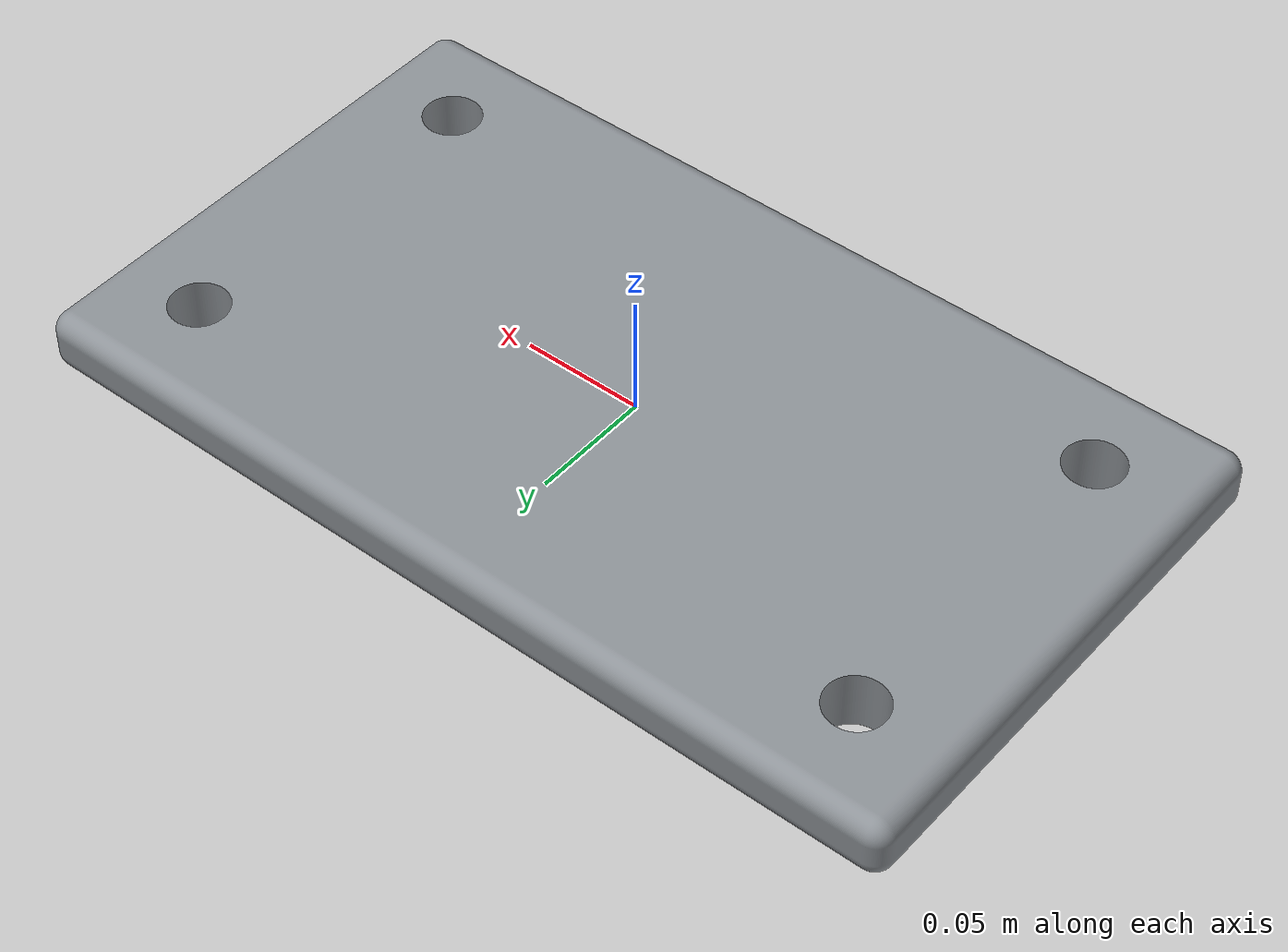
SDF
<?xml version="1.0"?><sdf version="1.6"><model name="metal_plate"><static>false</static><link name="link"><visual name="plate"><geometry><mesh><uri>model://metal_plate/meshes/metal_plate.stl</uri></mesh></geometry><material><ambient>0.55 0.57 0.59 1</ambient><diffuse>0.55 0.57 0.59 1</diffuse><specular>0.08 0.08 0.08 1</specular></material></visual><inertial><mass>0.8</mass><inertia><ixx>0.003268</ixx><iyy>0.009668</iyy><izz>0.012853</izz><ixy>0</ixy><ixz>0</ixz><iyz>0</iyz></inertia></inertial><collision name="plate"><geometry><box><size>0.38 0.22 0.025</size></box></geometry></collision></link></model></sdf>
